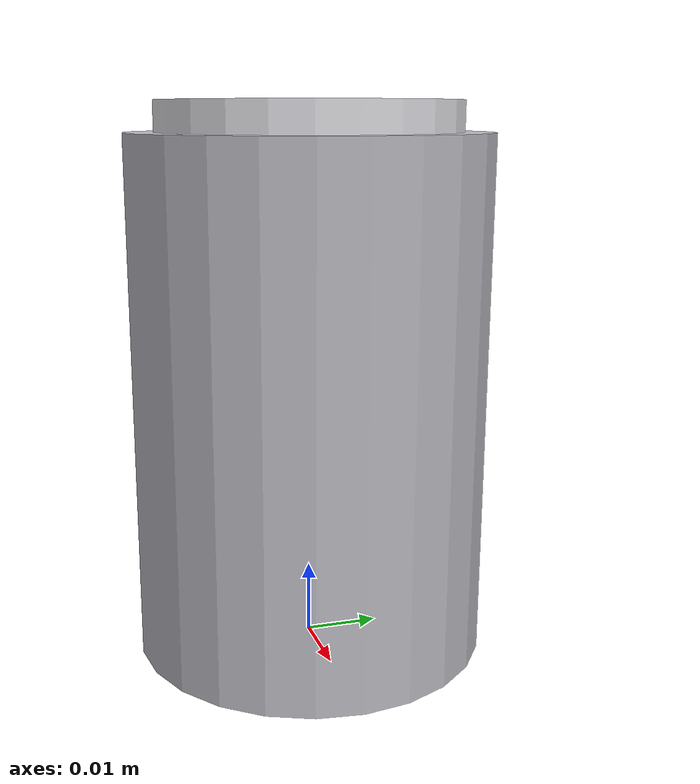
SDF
<sdf version="1.6">
  <model name="waste_metal">
    <pose>0 0 0 0 0 0</pose>
    <link name="body">
      <inertial>
        <mass>0.09</mass>
        <inertia>
          <ixx>0.00006</ixx>
          <iyy>0.00006</iyy>
          <izz>0.00003</izz>
          <ixy>0</ixy>
          <ixz>0</ixz>
          <iyz>0</iyz>
        </inertia>
      </inertial>

      <collision name="collision">
        <pose>0 0 0.035 0 0 0</pose>
        <geometry>
          <cylinder>
            <radius>0.024</radius>
            <length>0.07</length>
          </cylinder>
        </geometry>
        <surface>
          <friction>
            <ode>
              <mu>10.0</mu>
              <mu2>10.0</mu2>
            </ode>
          </friction>
        </surface>
      </collision>

      <visual name="visual_body">
        <pose>0 0 0.035 0 0 0</pose>
        <geometry>
          <cylinder>
            <radius>0.024</radius>
            <length>0.07</length>
          </cylinder>
        </geometry>
        <material>
          <ambient>0.75 0.75 0.78 1</ambient>
          <diffuse>0.75 0.75 0.78 1</diffuse>
          <specular>0.95 0.95 0.95 1</specular>
        </material>
      </visual>

      <visual name="visual_top">
        <pose>0 0 0.072 0 0 0</pose>
        <geometry>
          <cylinder>
            <radius>0.020</radius>
            <length>0.004</length>
          </cylinder>
        </geometry>
        <material>
          <ambient>0.90 0.90 0.92 1</ambient>
          <diffuse>0.90 0.90 0.92 1</diffuse>
        </material>
      </visual>
    </link>
  </model>
</sdf>
